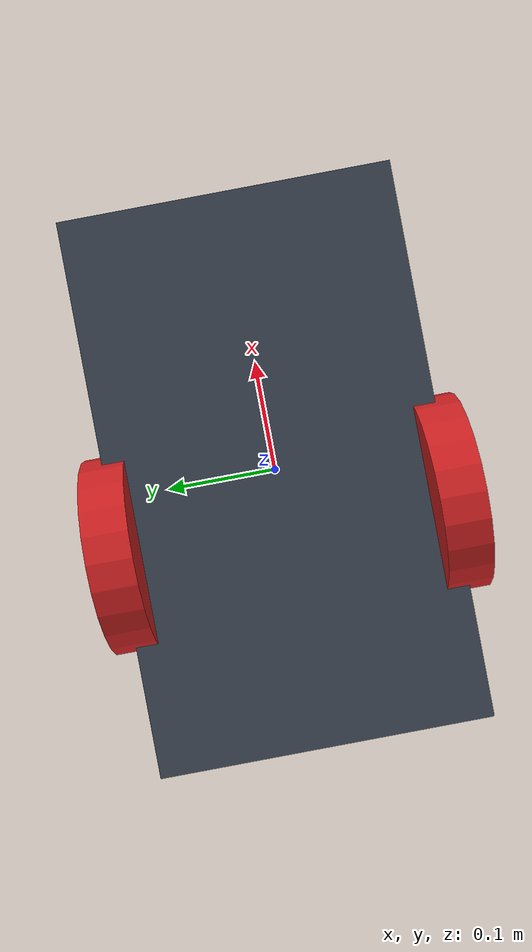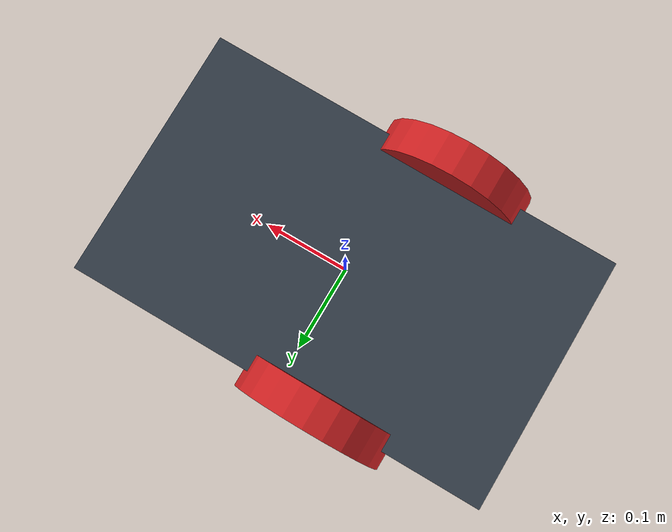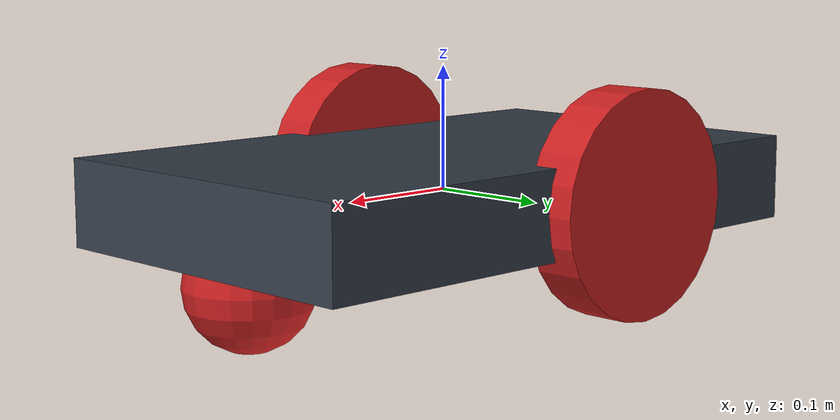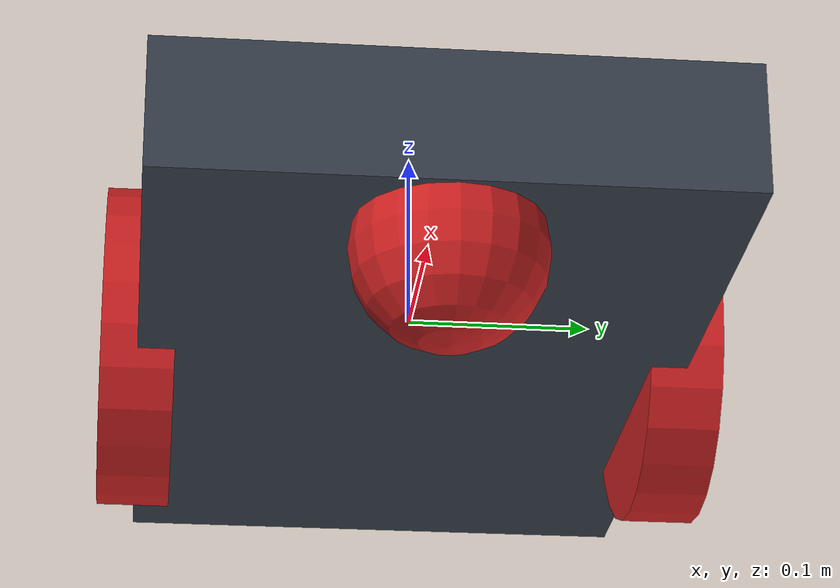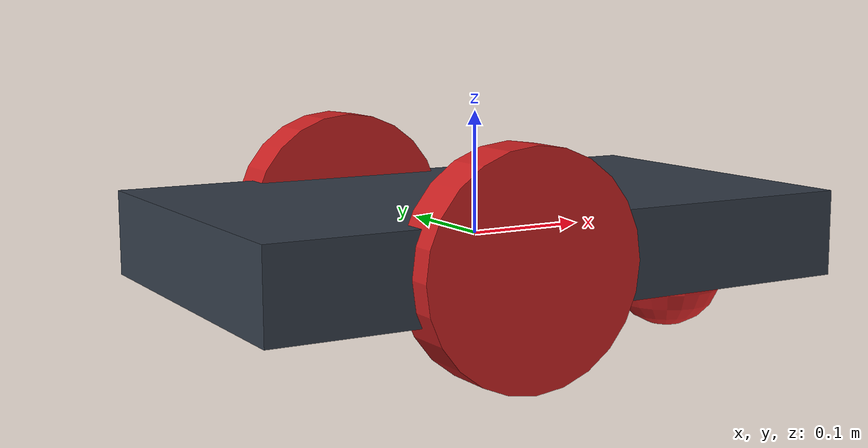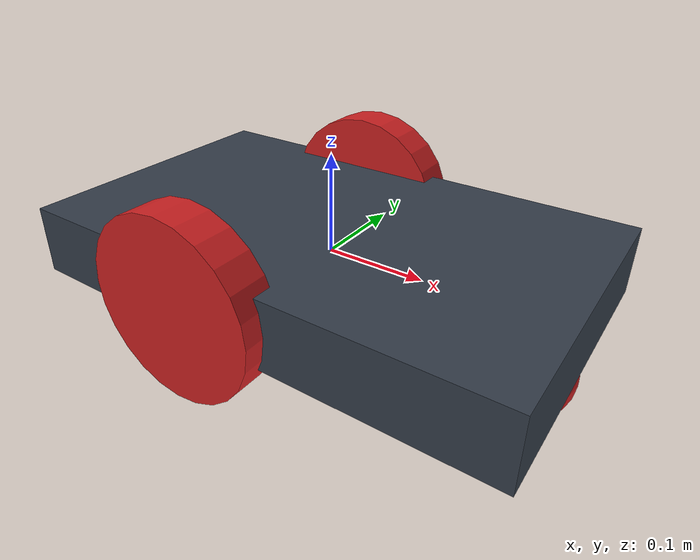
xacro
<?xml version="1.0" ?>
<robot name="m2wr"
    xmlns:xacro="http://www.ros.org/wiki/xacro">

    <xacro:include filename="$(find m2wr_description)/urdf/materials.xacro" />
    <xacro:include filename="$(find m2wr_description)/urdf/m2wr.gazebo" />
    <xacro:include filename="$(find m2wr_description)/urdf/macros.xacro" />

    <link name="link_chassis">
        <!-- pose and inertial -->
        <pose>0 0 0.1 0 0 0</pose>
        <inertial>
            <mass value="5"/>
            <origin rpy="0 0 0" xyz="0 0 0.1"/>
            <inertia ixx="0.0395416666667" ixy="0" ixz="0" iyy="0.106208333333" iyz="0" izz="0.106208333333"/>
        </inertial>
        <!-- body -->
        <collision name="collision_chassis">
            <geometry>
                <box size="0.5 0.3 0.07"/>
            </geometry>
        </collision>
        <visual>
            <origin rpy="0 0 0" xyz="0 0 0"/>
            <geometry>
                <box size="0.5 0.3 0.07"/>
            </geometry>
            <material name="blue"/>
        </visual>
        <!-- caster front -->
        <collision name="caster_front_collision">
            <origin rpy=" 0 0 0" xyz="0.35 0 -0.05"/>
            <geometry>
                <sphere radius="0.05"/>
            </geometry>
            <surface>
                <friction>
                    <ode>
                        <mu>0</mu>
                        <mu2>0</mu2>
                        <slip1>1.0</slip1>
                        <slip2>1.0</slip2>
                    </ode>
                </friction>
            </surface>
        </collision>
        <visual name="caster_front_visual">
            <origin rpy=" 0 0 0" xyz="0.2 0 -0.05"/>
            <geometry>
                <sphere radius="0.05"/>
            </geometry>
            <material name="red"/>
        </visual>
    </link>

    <xacro:link_wheel name="link_right_wheel" />
    <xacro:joint_wheel name="joint_right_wheel" child="link_right_wheel" origin_xyz="-0.05 0.15 0" />

    <xacro:link_wheel name="link_left_wheel" />
    <xacro:joint_wheel name="joint_left_wheel" child="link_left_wheel" origin_xyz="-0.05 -0.15 0" />

</robot>

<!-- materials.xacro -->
<robot name="m2wr"
    xmlns:xacro="http://www.ros.org/wiki/xacro">

    <material name="blue">
        <color rgba="0.203125 0.23828125 0.28515625 1.0"/>
    </material>
    <material name="red">
        <color rgba="0.80078125 0.12890625 0.1328125 1.0"/>
    </material>
    <material name="grey">
        <color rgba="0.2 0.2 0.2 1.0"/>
    </material>
    <material name="orange">
        <color rgba="1.0 0.423529411765 0.0392156862745 1.0"/>
    </material>
    <material name="white">
        <color rgba="1.0 1.0 1.0 1.0"/>
    </material>

</robot>

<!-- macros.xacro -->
<robot name="m2wr"
    xmlns:xacro="http://www.ros.org/wiki/xacro">

    <xacro:macro name="link_wheel" params="name">
        <link name="${name}">
            <inertial>
                <mass value="0.2"/>
                <origin rpy="0 1.5707 1.5707" xyz="0 0 0"/>
                <inertia ixx="0.000526666666667" ixy="0" ixz="0" iyy="0.000526666666667" iyz="0" izz="0.001"/>
            </inertial>
            <collision name="link_right_wheel_collision">
                <origin rpy="0 1.5707 1.5707" xyz="0 0 0"/>
                <geometry>
                    <cylinder length="0.04" radius="0.09"/>
                </geometry>
            </collision>
            <visual name="${name}_visual">
                <origin rpy="0 1.5707 1.5707" xyz="0 0 0"/>
                <geometry>
                    <cylinder length="0.04" radius="0.09"/>
                </geometry>
                <material name="red"/>
            </visual>
        </link>
    </xacro:macro>

    <xacro:macro name="joint_wheel" params="name child origin_xyz">
        <joint name="${name}" type="continuous">
            <origin rpy="0 0 0" xyz="${origin_xyz}"/>
            <child link="${child}"/>
            <parent link="link_chassis"/>
            <axis rpy="0 0 0" xyz="0 1 0"/>
            <limit effort="10000" velocity="1000"/>
            <joint_properties damping="1.0" friction="1.0"/>
        </joint>
    </xacro:macro>

    <xacro:macro name="cylinder_inertia" params="mass r l">
        <inertia ixx="${mass*(3*r*r+l*l)/12}" ixy="0" ixz="0" iyy="${mass*(3*r*r+l*l)/12}" iyz="0" izz="${mass*(r*r)/2}" />
    </xacro:macro>

</robot>
